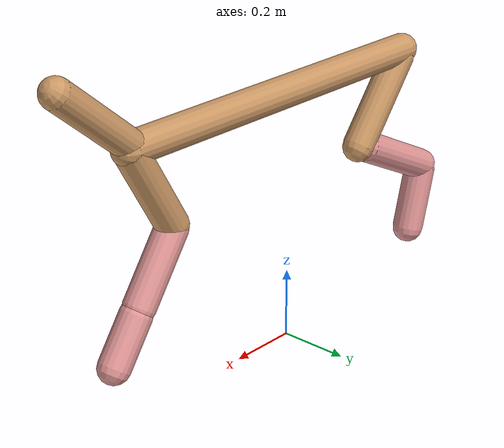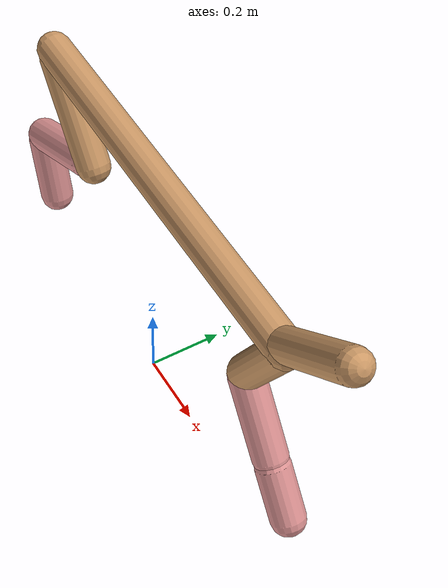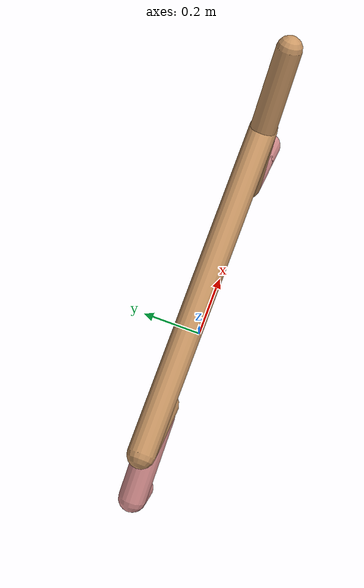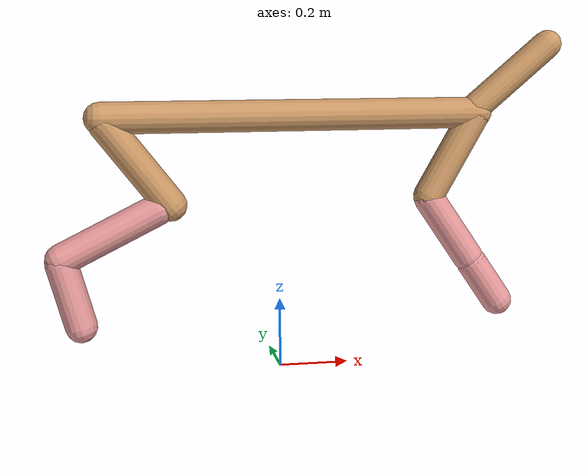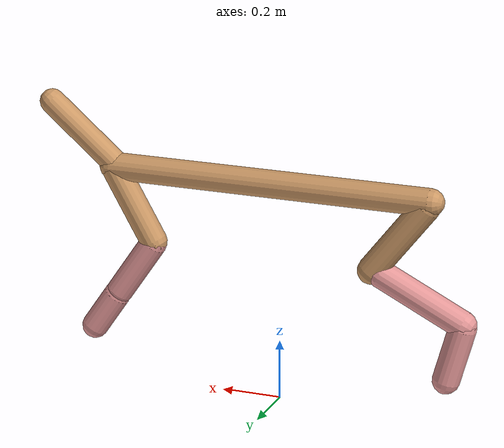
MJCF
<mujoco model="cheetah">
  <compiler angle="radian" coordinate="local" inertiafromgeom="true" settotalmass="14" />
  <default>
    <joint armature=".1" damping=".01" limited="true" solimplimit="0 .8 .03" solreflimit=".02 1" stiffness="8" />
    <geom conaffinity="0" condim="3" contype="1" friction="0.8 .1 .1" rgba="0.8 0.6 .4 1" solimp="0.0 0.8 0.01" solref="0.02 1" />
    <motor ctrllimited="true" ctrlrange="-1 1" />
  </default>
  <size nstack="300000" nuser_geom="1" />
  <option gravity="0 0 -9.81" timestep="0.01" />
  <worldbody>
    <body name="torso" pos="0.0 0.0 0.7299214914296817">
      <joint armature="0" axis="1 0 0" damping="0" limited="false" name="ignorex" pos="0 0 0" stiffness="0" type="slide" />
      <joint armature="0" axis="0 0 1" damping="0" limited="false" name="ignorez" pos="0 0 0" stiffness="0" type="slide" />
      <joint armature="0" axis="0 1 0" damping="0" limited="false" name="ignorey" pos="0 0 0" stiffness="0" type="hinge" />
      <geom fromto="-0.5 0.0 0.0 0.5830507944309498 0.0 0.0" name="torso" size="0.04511833559895768" type="capsule" />
      <geom axisangle="0 1 0 .87" name="head" pos="0.6830507944309497 0.0 0.1" size="0.041682721045520864 0.15" type="capsule" />

      <body name="bthigh" pos="-.5 0 0">
        <joint axis="0 1 0" damping="6" name="bthigh" pos="0 0 0" range="-.52 1.05" stiffness="240" type="hinge" />
        <geom axisangle="0 1 0 -3.8" name="bthigh" pos="0.10123979744526504 0.0 -0.13161173667884454" size="0.04553060060191963 0.14703341899942401" type="capsule" />
        <body name="bshin" pos="0.16247959489053007 0.0 -0.2532234733576891">
          <joint axis="0 1 0" damping="4.5" name="bshin" pos="0 0 0" range="-.785 .785" stiffness="180" type="hinge" />
          <geom axisangle="0 1 0 -2.03" name="bshin" pos="-0.1418814605970145 0.0 -0.07094073029850725" rgba="0.9 0.6 0.6 1" size="0.04553060060191963 0.15210353689595588" type="capsule" />
          <body name="bfoot" pos="-0.283762921194029 0.0 -0.1418814605970145">
            <joint axis="0 1 0" damping="3" name="bfoot" pos="0 0 0" range="-.4 .785" stiffness="120" type="hinge" />
            <geom axisangle="0 1 0 -.27" name="bfoot" pos="0.030389493050650772 0.0 -0.09825936086377084" rgba="0.9 0.6 0.6 1" size="0.04553060060191963 0.09531821645479902" type="capsule" />
            <inertial mass="10" />
          </body>
        </body>
      </body>
      <body name="fthigh" pos="0.5830507944309498 0.0 0.0">
        <joint axis="0 1 0" damping="4.5" name="fthigh" pos="0 0 0" range="-1.5 0.8" stiffness="180" type="hinge" />
        <geom axisangle="0 1 0 .52" name="fthigh" pos="-0.07209747296240646 0.0 -0.12359566793555389" size="0.0446637101989164 0.13716271794994528" type="capsule" />
        <body name="fshin" pos="-0.1441949459248129 0.0 -0.24719133587110778">
          <joint axis="0 1 0" damping="3" name="fshin" pos="0 0 0" range="-1.2 1.1" stiffness="120" type="hinge" />
          <geom axisangle="0 1 0 -.6" name="fshin" pos="0.0669424556092421 0.0 -0.09268955392048905" rgba="0.9 0.6 0.6 1" size="0.0446637101989164 0.10931765490747518" type="capsule" />
          <body name="ffoot" pos="0.1338849112184842 0.0 -0.1853791078409781">
            <joint axis="0 1 0" damping="1.5" name="ffoot" pos="0 0 0" range="-3.1 -0.3" stiffness="60" type="hinge" />
            <geom axisangle="0 1 0 -.6" name="ffoot" pos="0.04618474806943677 0.0 -0.07184294144134609" rgba="0.9 0.6 0.6 1" size="0.0446637101989164 0.07219090418418173" type="capsule" />
            <inertial mass="10" />
          </body>
        </body>
      </body>
    </body>
  </worldbody>
  <actuator>
    <motor gear="120" joint="bthigh" name="bthigh" />
    <motor gear="90" joint="bshin" name="bshin" />
    <motor gear="60" joint="bfoot" name="bfoot" />
    <motor gear="120" joint="fthigh" name="fthigh" />
    <motor gear="60" joint="fshin" name="fshin" />
    <motor gear="30" joint="ffoot" name="ffoot" />
  </actuator>
</mujoco>
